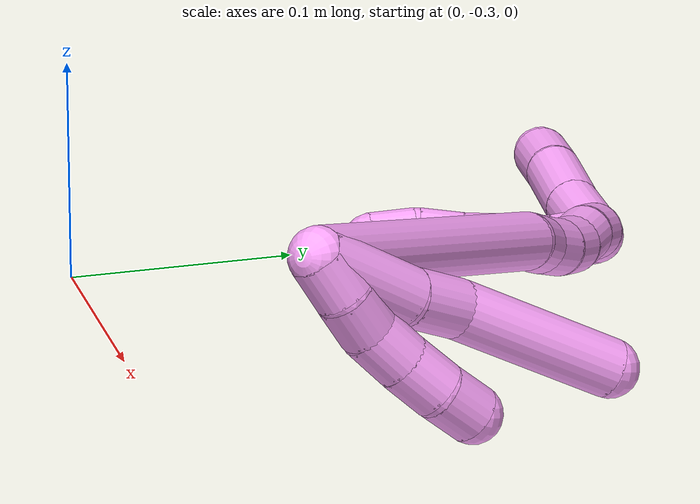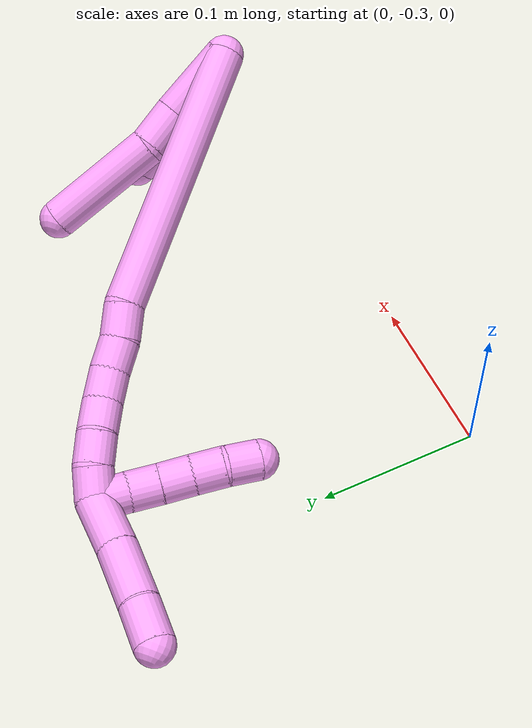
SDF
<sdf version="1.7">
 <world name="default">
  <model name="4">
   <static>0</static>
   <link name="4">
    <collision name="collision-cylinder-e_1_2_8">
     <pose>0.009769 -0.007849 -0.020681 2.77888 0.415872 1.71061</pose>
     <geometry><cylinder><radius>0.0125</radius><length>0.048364</length></cylinder></geometry>
     <surface>
      <friction><ode><mu>1.16</mu><mu2>1.16</mu2><slip1>0</slip1><slip2>0</slip2></ode></friction>
      <contact><ode><kp>1e+06</kp><kd>1</kd><max_vel>0</max_vel><min_depth>0.001</min_depth></ode></contact>
     </surface>
    </collision>
    <visual name="visual-cylinder-e_1_2_8">
     <pose>0.009769 -0.007849 -0.020681 2.77888 0.415872 1.71061</pose>
     <geometry><cylinder><radius>0.0125</radius><length>0.048364</length></cylinder></geometry>
     <material><ambient>1 0.65098 0.996078 1</ambient></material>
    </visual>
    <collision name="collision-cylinder-e_2_8_9">
     <pose>0.023788 -0.018233 -0.053859 2.9414 0.321675 2.03298</pose>
     <geometry><cylinder><radius>0.0125</radius><length>0.026881</length></cylinder></geometry>
     <surface>
      <friction><ode><mu>1.16</mu><mu2>1.16</mu2><slip1>0</slip1><slip2>0</slip2></ode></friction>
      <contact><ode><kp>1e+06</kp><kd>1</kd><max_vel>0</max_vel><min_depth>0.001</min_depth></ode></contact>
     </surface>
    </collision>
    <visual name="visual-cylinder-e_2_8_9">
     <pose>0.023788 -0.018233 -0.053859 2.9414 0.321675 2.03298</pose>
     <geometry><cylinder><radius>0.0125</radius><length>0.026881</length></cylinder></geometry>
     <material><ambient>1 0.65098 0.996078 1</ambient></material>
    </visual>
    <collision name="collision-cylinder-e_3_9_6">
     <pose>0.048912 -0.031875 -0.095303 2.77523 0.592573 2.0507</pose>
     <geometry><cylinder><radius>0.0125</radius><length>0.074755</length></cylinder></geometry>
     <surface>
      <friction><ode><mu>1.16</mu><mu2>1.16</mu2><slip1>0</slip1><slip2>0</slip2></ode></friction>
      <contact><ode><kp>1e+06</kp><kd>1</kd><max_vel>0</max_vel><min_depth>0.001</min_depth></ode></contact>
     </surface>
    </collision>
    <visual name="visual-cylinder-e_3_9_6">
     <pose>0.048912 -0.031875 -0.095303 2.77523 0.592573 2.0507</pose>
     <geometry><cylinder><radius>0.0125</radius><length>0.074755</length></cylinder></geometry>
     <material><ambient>1 0.65098 0.996078 1</ambient></material>
    </visual>
    <collision name="collision-cylinder-e_1_2_10">
     <pose>0.003563 -0.00759 -0.00545 2.19359 0.364261 0.68934</pose>
     <geometry><cylinder><radius>0.0125</radius><length>0.02</length></cylinder></geometry>
     <surface>
      <friction><ode><mu>1.16</mu><mu2>1.16</mu2><slip1>0</slip1><slip2>0</slip2></ode></friction>
      <contact><ode><kp>1e+06</kp><kd>1</kd><max_vel>0</max_vel><min_depth>0.001</min_depth></ode></contact>
     </surface>
    </collision>
    <visual name="visual-cylinder-e_1_2_10">
     <pose>0.003563 -0.00759 -0.00545 2.19359 0.364261 0.68934</pose>
     <geometry><cylinder><radius>0.0125</radius><length>0.02</length></cylinder></geometry>
     <material><ambient>1 0.65098 0.996078 1</ambient></material>
    </visual>
    <collision name="collision-cylinder-e_2_10_11">
     <pose>0.00959 -0.022272 -0.017505 2.32056 0.249084 0.560142</pose>
     <geometry><cylinder><radius>0.0125</radius><length>0.02</length></cylinder></geometry>
     <surface>
      <friction><ode><mu>1.16</mu><mu2>1.16</mu2><slip1>0</slip1><slip2>0</slip2></ode></friction>
      <contact><ode><kp>1e+06</kp><kd>1</kd><max_vel>0</max_vel><min_depth>0.001</min_depth></ode></contact>
     </surface>
    </collision>
    <visual name="visual-cylinder-e_2_10_11">
     <pose>0.00959 -0.022272 -0.017505 2.32056 0.249084 0.560142</pose>
     <geometry><cylinder><radius>0.0125</radius><length>0.02</length></cylinder></geometry>
     <material><ambient>1 0.65098 0.996078 1</ambient></material>
    </visual>
    <collision name="collision-cylinder-e_3_11_12">
     <pose>0.016751 -0.035292 -0.030653 2.40557 0.48878 1.14818</pose>
     <geometry><cylinder><radius>0.0125</radius><length>0.02</length></cylinder></geometry>
     <surface>
      <friction><ode><mu>1.16</mu><mu2>1.16</mu2><slip1>0</slip1><slip2>0</slip2></ode></friction>
      <contact><ode><kp>1e+06</kp><kd>1</kd><max_vel>0</max_vel><min_depth>0.001</min_depth></ode></contact>
     </surface>
    </collision>
    <visual name="visual-cylinder-e_3_11_12">
     <pose>0.016751 -0.035292 -0.030653 2.40557 0.48878 1.14818</pose>
     <geometry><cylinder><radius>0.0125</radius><length>0.02</length></cylinder></geometry>
     <material><ambient>1 0.65098 0.996078 1</ambient></material>
    </visual>
    <collision name="collision-cylinder-e_4_12_13">
     <pose>0.026666 -0.046742 -0.043697 2.43727 0.549137 1.30799</pose>
     <geometry><cylinder><radius>0.0125</radius><length>0.02</length></cylinder></geometry>
     <surface>
      <friction><ode><mu>1.16</mu><mu2>1.16</mu2><slip1>0</slip1><slip2>0</slip2></ode></friction>
      <contact><ode><kp>1e+06</kp><kd>1</kd><max_vel>0</max_vel><min_depth>0.001</min_depth></ode></contact>
     </surface>
    </collision>
    <visual name="visual-cylinder-e_4_12_13">
     <pose>0.026666 -0.046742 -0.043697 2.43727 0.549137 1.30799</pose>
     <geometry><cylinder><radius>0.0125</radius><length>0.02</length></cylinder></geometry>
     <material><ambient>1 0.65098 0.996078 1</ambient></material>
    </visual>
    <collision name="collision-cylinder-e_5_13_5">
     <pose>0.035849 -0.057037 -0.05804 2.59507 0.407553 1.27064</pose>
     <geometry><cylinder><radius>0.0125</radius><length>0.02</length></cylinder></geometry>
     <surface>
      <friction><ode><mu>1.16</mu><mu2>1.16</mu2><slip1>0</slip1><slip2>0</slip2></ode></friction>
      <contact><ode><kp>1e+06</kp><kd>1</kd><max_vel>0</max_vel><min_depth>0.001</min_depth></ode></contact>
     </surface>
    </collision>
    <visual name="visual-cylinder-e_5_13_5">
     <pose>0.035849 -0.057037 -0.05804 2.59507 0.407553 1.27064</pose>
     <geometry><cylinder><radius>0.0125</radius><length>0.02</length></cylinder></geometry>
     <material><ambient>1 0.65098 0.996078 1</ambient></material>
    </visual>
    <collision name="collision-cylinder-e_1_2_14">
     <pose>-0.000698 -0.001216 -0.088998 3.12792 -0.007845 -1.04218</pose>
     <geometry><cylinder><radius>0.0125</radius><length>0.178018</length></cylinder></geometry>
     <surface>
      <friction><ode><mu>1.16</mu><mu2>1.16</mu2><slip1>0</slip1><slip2>0</slip2></ode></friction>
      <contact><ode><kp>1e+06</kp><kd>1</kd><max_vel>0</max_vel><min_depth>0.001</min_depth></ode></contact>
     </surface>
    </collision>
    <visual name="visual-cylinder-e_1_2_14">
     <pose>-0.000698 -0.001216 -0.088998 3.12792 -0.007845 -1.04218</pose>
     <geometry><cylinder><radius>0.0125</radius><length>0.178018</length></cylinder></geometry>
     <material><ambient>1 0.65098 0.996078 1</ambient></material>
    </visual>
    <collision name="collision-cylinder-e_2_14_15">
     <pose>-0.003838 -0.003989 -0.188363 2.9926 -0.228804 -1.98951</pose>
     <geometry><cylinder><radius>0.0125</radius><length>0.021527</length></cylinder></geometry>
     <surface>
      <friction><ode><mu>1.16</mu><mu2>1.16</mu2><slip1>0</slip1><slip2>0</slip2></ode></friction>
      <contact><ode><kp>1e+06</kp><kd>1</kd><max_vel>0</max_vel><min_depth>0.001</min_depth></ode></contact>
     </surface>
    </collision>
    <visual name="visual-cylinder-e_2_14_15">
     <pose>-0.003838 -0.003989 -0.188363 2.9926 -0.228804 -1.98951</pose>
     <geometry><cylinder><radius>0.0125</radius><length>0.021527</length></cylinder></geometry>
     <material><ambient>1 0.65098 0.996078 1</ambient></material>
    </visual>
    <collision name="collision-cylinder-e_3_15_16">
     <pose>-0.00681 -0.006639 -0.208727 3.03264 -0.052689 -0.900314</pose>
     <geometry><cylinder><radius>0.0125</radius><length>0.020142</length></cylinder></geometry>
     <surface>
      <friction><ode><mu>1.16</mu><mu2>1.16</mu2><slip1>0</slip1><slip2>0</slip2></ode></friction>
      <contact><ode><kp>1e+06</kp><kd>1</kd><max_vel>0</max_vel><min_depth>0.001</min_depth></ode></contact>
     </surface>
    </collision>
    <visual name="visual-cylinder-e_3_15_16">
     <pose>-0.00681 -0.006639 -0.208727 3.03264 -0.052689 -0.900314</pose>
     <geometry><cylinder><radius>0.0125</radius><length>0.020142</length></cylinder></geometry>
     <material><ambient>1 0.65098 0.996078 1</ambient></material>
    </visual>
    <collision name="collision-cylinder-e_4_16_17">
     <pose>-0.008942 -0.007775 -0.228663 3.13731 -0.159796 -3.08816</pose>
     <geometry><cylinder><radius>0.0125</radius><length>0.020134</length></cylinder></geometry>
     <surface>
      <friction><ode><mu>1.16</mu><mu2>1.16</mu2><slip1>0</slip1><slip2>0</slip2></ode></friction>
      <contact><ode><kp>1e+06</kp><kd>1</kd><max_vel>0</max_vel><min_depth>0.001</min_depth></ode></contact>
     </surface>
    </collision>
    <visual name="visual-cylinder-e_4_16_17">
     <pose>-0.008942 -0.007775 -0.228663 3.13731 -0.159796 -3.08816</pose>
     <geometry><cylinder><radius>0.0125</radius><length>0.020134</length></cylinder></geometry>
     <material><ambient>1 0.65098 0.996078 1</ambient></material>
    </visual>
    <collision name="collision-cylinder-e_5_17_18">
     <pose>-0.01284 -0.006258 -0.248277 -2.98178 -0.230203 1.93006</pose>
     <geometry><cylinder><radius>0.0125</radius><length>0.02013</length></cylinder></geometry>
     <surface>
      <friction><ode><mu>1.16</mu><mu2>1.16</mu2><slip1>0</slip1><slip2>0</slip2></ode></friction>
      <contact><ode><kp>1e+06</kp><kd>1</kd><max_vel>0</max_vel><min_depth>0.001</min_depth></ode></contact>
     </surface>
    </collision>
    <visual name="visual-cylinder-e_5_17_18">
     <pose>-0.01284 -0.006258 -0.248277 -2.98178 -0.230203 1.93006</pose>
     <geometry><cylinder><radius>0.0125</radius><length>0.02013</length></cylinder></geometry>
     <material><ambient>1 0.65098 0.996078 1</ambient></material>
    </visual>
    <collision name="collision-cylinder-e_6_18_19">
     <pose>-0.017724 -0.004887 -0.267617 3.12204 -0.261547 -2.99316</pose>
     <geometry><cylinder><radius>0.0125</radius><length>0.020016</length></cylinder></geometry>
     <surface>
      <friction><ode><mu>1.16</mu><mu2>1.16</mu2><slip1>0</slip1><slip2>0</slip2></ode></friction>
      <contact><ode><kp>1e+06</kp><kd>1</kd><max_vel>0</max_vel><min_depth>0.001</min_depth></ode></contact>
     </surface>
    </collision>
    <visual name="visual-cylinder-e_6_18_19">
     <pose>-0.017724 -0.004887 -0.267617 3.12204 -0.261547 -2.99316</pose>
     <geometry><cylinder><radius>0.0125</radius><length>0.020016</length></cylinder></geometry>
     <material><ambient>1 0.65098 0.996078 1</ambient></material>
    </visual>
    <collision name="collision-cylinder-e_7_19_1">
     <pose>-0.024397 -0.006952 -0.286234 2.93504 -0.420003 -2.23638</pose>
     <geometry><cylinder><radius>0.0125</radius><length>0.020033</length></cylinder></geometry>
     <surface>
      <friction><ode><mu>1.16</mu><mu2>1.16</mu2><slip1>0</slip1><slip2>0</slip2></ode></friction>
      <contact><ode><kp>1e+06</kp><kd>1</kd><max_vel>0</max_vel><min_depth>0.001</min_depth></ode></contact>
     </surface>
    </collision>
    <visual name="visual-cylinder-e_7_19_1">
     <pose>-0.024397 -0.006952 -0.286234 2.93504 -0.420003 -2.23638</pose>
     <geometry><cylinder><radius>0.0125</radius><length>0.020033</length></cylinder></geometry>
     <material><ambient>1 0.65098 0.996078 1</ambient></material>
    </visual>
    <collision name="collision-cylinder-e_1_1_20">
     <pose>-0.035972 -0.011291 -0.289036 0.380996 -0.846644 -0.173334</pose>
     <geometry><cylinder><radius>0.0125</radius><length>0.02</length></cylinder></geometry>
     <surface>
      <friction><ode><mu>1.16</mu><mu2>1.16</mu2><slip1>0</slip1><slip2>0</slip2></ode></friction>
      <contact><ode><kp>1e+06</kp><kd>1</kd><max_vel>0</max_vel><min_depth>0.001</min_depth></ode></contact>
     </surface>
    </collision>
    <visual name="visual-cylinder-e_1_1_20">
     <pose>-0.035972 -0.011291 -0.289036 0.380996 -0.846644 -0.173334</pose>
     <geometry><cylinder><radius>0.0125</radius><length>0.02</length></cylinder></geometry>
     <material><ambient>1 0.65098 0.996078 1</ambient></material>
    </visual>
    <collision name="collision-cylinder-e_2_20_21">
     <pose>-0.05167 -0.014219 -0.277191 0.081363 -0.962682 -0.042514</pose>
     <geometry><cylinder><radius>0.0125</radius><length>0.02</length></cylinder></geometry>
     <surface>
      <friction><ode><mu>1.16</mu><mu2>1.16</mu2><slip1>0</slip1><slip2>0</slip2></ode></friction>
      <contact><ode><kp>1e+06</kp><kd>1</kd><max_vel>0</max_vel><min_depth>0.001</min_depth></ode></contact>
     </surface>
    </collision>
    <visual name="visual-cylinder-e_2_20_21">
     <pose>-0.05167 -0.014219 -0.277191 0.081363 -0.962682 -0.042514</pose>
     <geometry><cylinder><radius>0.0125</radius><length>0.02</length></cylinder></geometry>
     <material><ambient>1 0.65098 0.996078 1</ambient></material>
    </visual>
    <collision name="collision-cylinder-e_3_21_22">
     <pose>-0.067926 -0.015132 -0.26558 0.075632 -0.935464 -0.038216</pose>
     <geometry><cylinder><radius>0.0125</radius><length>0.02</length></cylinder></geometry>
     <surface>
      <friction><ode><mu>1.16</mu><mu2>1.16</mu2><slip1>0</slip1><slip2>0</slip2></ode></friction>
      <contact><ode><kp>1e+06</kp><kd>1</kd><max_vel>0</max_vel><min_depth>0.001</min_depth></ode></contact>
     </surface>
    </collision>
    <visual name="visual-cylinder-e_3_21_22">
     <pose>-0.067926 -0.015132 -0.26558 0.075632 -0.935464 -0.038216</pose>
     <geometry><cylinder><radius>0.0125</radius><length>0.02</length></cylinder></geometry>
     <material><ambient>1 0.65098 0.996078 1</ambient></material>
    </visual>
    <collision name="collision-cylinder-e_4_22_23">
     <pose>-0.084251 -0.015277 -0.254058 -0.054054 -0.974985 0.028663</pose>
     <geometry><cylinder><radius>0.0125</radius><length>0.02</length></cylinder></geometry>
     <surface>
      <friction><ode><mu>1.16</mu><mu2>1.16</mu2><slip1>0</slip1><slip2>0</slip2></ode></friction>
      <contact><ode><kp>1e+06</kp><kd>1</kd><max_vel>0</max_vel><min_depth>0.001</min_depth></ode></contact>
     </surface>
    </collision>
    <visual name="visual-cylinder-e_4_22_23">
     <pose>-0.084251 -0.015277 -0.254058 -0.054054 -0.974985 0.028663</pose>
     <geometry><cylinder><radius>0.0125</radius><length>0.02</length></cylinder></geometry>
     <material><ambient>1 0.65098 0.996078 1</ambient></material>
    </visual>
    <collision name="collision-cylinder-e_5_23_4">
     <pose>-0.100642 -0.016905 -0.242938 0.336606 -0.946489 -0.173569</pose>
     <geometry><cylinder><radius>0.0125</radius><length>0.02</length></cylinder></geometry>
     <surface>
      <friction><ode><mu>1.16</mu><mu2>1.16</mu2><slip1>0</slip1><slip2>0</slip2></ode></friction>
      <contact><ode><kp>1e+06</kp><kd>1</kd><max_vel>0</max_vel><min_depth>0.001</min_depth></ode></contact>
     </surface>
    </collision>
    <visual name="visual-cylinder-e_5_23_4">
     <pose>-0.100642 -0.016905 -0.242938 0.336606 -0.946489 -0.173569</pose>
     <geometry><cylinder><radius>0.0125</radius><length>0.02</length></cylinder></geometry>
     <material><ambient>1 0.65098 0.996078 1</ambient></material>
    </visual>
    <collision name="collision-cylinder-e_1_1_24">
     <pose>-0.040628 -0.004235 -0.306893 -2.76773 -0.768059 2.26605</pose>
     <geometry><cylinder><radius>0.0125</radius><length>0.034968</length></cylinder></geometry>
     <surface>
      <friction><ode><mu>1.16</mu><mu2>1.16</mu2><slip1>0</slip1><slip2>0</slip2></ode></friction>
      <contact><ode><kp>1e+06</kp><kd>1</kd><max_vel>0</max_vel><min_depth>0.001</min_depth></ode></contact>
     </surface>
    </collision>
    <visual name="visual-cylinder-e_1_1_24">
     <pose>-0.040628 -0.004235 -0.306893 -2.76773 -0.768059 2.26605</pose>
     <geometry><cylinder><radius>0.0125</radius><length>0.034968</length></cylinder></geometry>
     <material><ambient>1 0.65098 0.996078 1</ambient></material>
    </visual>
    <collision name="collision-cylinder-e_2_24_25">
     <pose>-0.06536 0.006083 -0.332026 -2.73848 -0.711567 2.13609</pose>
     <geometry><cylinder><radius>0.0125</radius><length>0.038546</length></cylinder></geometry>
     <surface>
      <friction><ode><mu>1.16</mu><mu2>1.16</mu2><slip1>0</slip1><slip2>0</slip2></ode></friction>
      <contact><ode><kp>1e+06</kp><kd>1</kd><max_vel>0</max_vel><min_depth>0.001</min_depth></ode></contact>
     </surface>
    </collision>
    <visual name="visual-cylinder-e_2_24_25">
     <pose>-0.06536 0.006083 -0.332026 -2.73848 -0.711567 2.13609</pose>
     <geometry><cylinder><radius>0.0125</radius><length>0.038546</length></cylinder></geometry>
     <material><ambient>1 0.65098 0.996078 1</ambient></material>
    </visual>
    <collision name="collision-cylinder-e_3_25_3">
     <pose>-0.086569 0.014427 -0.355156 -2.87813 -0.709117 2.45419</pose>
     <geometry><cylinder><radius>0.0125</radius><length>0.026486</length></cylinder></geometry>
     <surface>
      <friction><ode><mu>1.16</mu><mu2>1.16</mu2><slip1>0</slip1><slip2>0</slip2></ode></friction>
      <contact><ode><kp>1e+06</kp><kd>1</kd><max_vel>0</max_vel><min_depth>0.001</min_depth></ode></contact>
     </surface>
    </collision>
    <visual name="visual-cylinder-e_3_25_3">
     <pose>-0.086569 0.014427 -0.355156 -2.87813 -0.709117 2.45419</pose>
     <geometry><cylinder><radius>0.0125</radius><length>0.026486</length></cylinder></geometry>
     <material><ambient>1 0.65098 0.996078 1</ambient></material>
    </visual>
    <collision name="collision-sphere-3">
     <pose>-0.095193 0.017044 -0.364859 0 -0 0</pose>
     <geometry><sphere><radius>0.0125</radius></sphere></geometry>
     <surface>
      <friction><ode><mu>1.16</mu><mu2>1.16</mu2><slip1>0</slip1><slip2>0</slip2></ode></friction>
      <contact><ode><kp>1e+06</kp><kd>1</kd><max_vel>0</max_vel><min_depth>0.001</min_depth></ode></contact>
     </surface>
    </collision>
    <visual name="visual-sphere-3">
     <pose>-0.095193 0.017044 -0.364859 0 -0 0</pose>
     <geometry><sphere><radius>0.0125</radius></sphere></geometry>
     <material><ambient>1 0.65098 0.996078 1</ambient></material>
    </visual>
    <collision name="collision-sphere-25">
     <pose>-0.077946 0.011809 -0.345452 0 -0 0</pose>
     <geometry><sphere><radius>0.0125</radius></sphere></geometry>
     <surface>
      <friction><ode><mu>1.16</mu><mu2>1.16</mu2><slip1>0</slip1><slip2>0</slip2></ode></friction>
      <contact><ode><kp>1e+06</kp><kd>1</kd><max_vel>0</max_vel><min_depth>0.001</min_depth></ode></contact>
     </surface>
    </collision>
    <visual name="visual-sphere-25">
     <pose>-0.077946 0.011809 -0.345452 0 -0 0</pose>
     <geometry><sphere><radius>0.0125</radius></sphere></geometry>
     <material><ambient>1 0.65098 0.996078 1</ambient></material>
    </visual>
    <collision name="collision-sphere-24">
     <pose>-0.052775 0.000358 -0.3186 0 -0 0</pose>
     <geometry><sphere><radius>0.0125</radius></sphere></geometry>
     <surface>
      <friction><ode><mu>1.16</mu><mu2>1.16</mu2><slip1>0</slip1><slip2>0</slip2></ode></friction>
      <contact><ode><kp>1e+06</kp><kd>1</kd><max_vel>0</max_vel><min_depth>0.001</min_depth></ode></contact>
     </surface>
    </collision>
    <visual name="visual-sphere-24">
     <pose>-0.052775 0.000358 -0.3186 0 -0 0</pose>
     <geometry><sphere><radius>0.0125</radius></sphere></geometry>
     <material><ambient>1 0.65098 0.996078 1</ambient></material>
    </visual>
    <collision name="collision-sphere-4">
     <pose>-0.108756 -0.018835 -0.23742 0 -0 0</pose>
     <geometry><sphere><radius>0.0125</radius></sphere></geometry>
     <surface>
      <friction><ode><mu>1.16</mu><mu2>1.16</mu2><slip1>0</slip1><slip2>0</slip2></ode></friction>
      <contact><ode><kp>1e+06</kp><kd>1</kd><max_vel>0</max_vel><min_depth>0.001</min_depth></ode></contact>
     </surface>
    </collision>
    <visual name="visual-sphere-4">
     <pose>-0.108756 -0.018835 -0.23742 0 -0 0</pose>
     <geometry><sphere><radius>0.0125</radius></sphere></geometry>
     <material><ambient>1 0.65098 0.996078 1</ambient></material>
    </visual>
    <collision name="collision-sphere-23">
     <pose>-0.092528 -0.014974 -0.248455 0 -0 0</pose>
     <geometry><sphere><radius>0.0125</radius></sphere></geometry>
     <surface>
      <friction><ode><mu>1.16</mu><mu2>1.16</mu2><slip1>0</slip1><slip2>0</slip2></ode></friction>
      <contact><ode><kp>1e+06</kp><kd>1</kd><max_vel>0</max_vel><min_depth>0.001</min_depth></ode></contact>
     </surface>
    </collision>
    <visual name="visual-sphere-23">
     <pose>-0.092528 -0.014974 -0.248455 0 -0 0</pose>
     <geometry><sphere><radius>0.0125</radius></sphere></geometry>
     <material><ambient>1 0.65098 0.996078 1</ambient></material>
    </visual>
    <collision name="collision-sphere-22">
     <pose>-0.075974 -0.01558 -0.259662 0 -0 0</pose>
     <geometry><sphere><radius>0.0125</radius></sphere></geometry>
     <surface>
      <friction><ode><mu>1.16</mu><mu2>1.16</mu2><slip1>0</slip1><slip2>0</slip2></ode></friction>
      <contact><ode><kp>1e+06</kp><kd>1</kd><max_vel>0</max_vel><min_depth>0.001</min_depth></ode></contact>
     </surface>
    </collision>
    <visual name="visual-sphere-22">
     <pose>-0.075974 -0.01558 -0.259662 0 -0 0</pose>
     <geometry><sphere><radius>0.0125</radius></sphere></geometry>
     <material><ambient>1 0.65098 0.996078 1</ambient></material>
    </visual>
    <collision name="collision-sphere-21">
     <pose>-0.059877 -0.014684 -0.271497 0 -0 0</pose>
     <geometry><sphere><radius>0.0125</radius></sphere></geometry>
     <surface>
      <friction><ode><mu>1.16</mu><mu2>1.16</mu2><slip1>0</slip1><slip2>0</slip2></ode></friction>
      <contact><ode><kp>1e+06</kp><kd>1</kd><max_vel>0</max_vel><min_depth>0.001</min_depth></ode></contact>
     </surface>
    </collision>
    <visual name="visual-sphere-21">
     <pose>-0.059877 -0.014684 -0.271497 0 -0 0</pose>
     <geometry><sphere><radius>0.0125</radius></sphere></geometry>
     <material><ambient>1 0.65098 0.996078 1</ambient></material>
    </visual>
    <collision name="collision-sphere-20">
     <pose>-0.043462 -0.013755 -0.282886 0 -0 0</pose>
     <geometry><sphere><radius>0.0125</radius></sphere></geometry>
     <surface>
      <friction><ode><mu>1.16</mu><mu2>1.16</mu2><slip1>0</slip1><slip2>0</slip2></ode></friction>
      <contact><ode><kp>1e+06</kp><kd>1</kd><max_vel>0</max_vel><min_depth>0.001</min_depth></ode></contact>
     </surface>
    </collision>
    <visual name="visual-sphere-20">
     <pose>-0.043462 -0.013755 -0.282886 0 -0 0</pose>
     <geometry><sphere><radius>0.0125</radius></sphere></geometry>
     <material><ambient>1 0.65098 0.996078 1</ambient></material>
    </visual>
    <collision name="collision-sphere-11">
     <pose>0.012056 -0.029364 -0.024109 0 -0 0</pose>
     <geometry><sphere><radius>0.0125</radius></sphere></geometry>
     <surface>
      <friction><ode><mu>1.16</mu><mu2>1.16</mu2><slip1>0</slip1><slip2>0</slip2></ode></friction>
      <contact><ode><kp>1e+06</kp><kd>1</kd><max_vel>0</max_vel><min_depth>0.001</min_depth></ode></contact>
     </surface>
    </collision>
    <visual name="visual-sphere-11">
     <pose>0.012056 -0.029364 -0.024109 0 -0 0</pose>
     <geometry><sphere><radius>0.0125</radius></sphere></geometry>
     <material><ambient>1 0.65098 0.996078 1</ambient></material>
    </visual>
    <collision name="collision-sphere-10">
     <pose>0.007125 -0.015179 -0.010901 0 -0 0</pose>
     <geometry><sphere><radius>0.0125</radius></sphere></geometry>
     <surface>
      <friction><ode><mu>1.16</mu><mu2>1.16</mu2><slip1>0</slip1><slip2>0</slip2></ode></friction>
      <contact><ode><kp>1e+06</kp><kd>1</kd><max_vel>0</max_vel><min_depth>0.001</min_depth></ode></contact>
     </surface>
    </collision>
    <visual name="visual-sphere-10">
     <pose>0.007125 -0.015179 -0.010901 0 -0 0</pose>
     <geometry><sphere><radius>0.0125</radius></sphere></geometry>
     <material><ambient>1 0.65098 0.996078 1</ambient></material>
    </visual>
    <collision name="collision-sphere-6">
     <pose>0.069788 -0.042982 -0.124251 0 -0 0</pose>
     <geometry><sphere><radius>0.0125</radius></sphere></geometry>
     <surface>
      <friction><ode><mu>1.16</mu><mu2>1.16</mu2><slip1>0</slip1><slip2>0</slip2></ode></friction>
      <contact><ode><kp>1e+06</kp><kd>1</kd><max_vel>0</max_vel><min_depth>0.001</min_depth></ode></contact>
     </surface>
    </collision>
    <visual name="visual-sphere-6">
     <pose>0.069788 -0.042982 -0.124251 0 -0 0</pose>
     <geometry><sphere><radius>0.0125</radius></sphere></geometry>
     <material><ambient>1 0.65098 0.996078 1</ambient></material>
    </visual>
    <collision name="collision-sphere-9">
     <pose>0.028037 -0.020769 -0.066356 0 -0 0</pose>
     <geometry><sphere><radius>0.0125</radius></sphere></geometry>
     <surface>
      <friction><ode><mu>1.16</mu><mu2>1.16</mu2><slip1>0</slip1><slip2>0</slip2></ode></friction>
      <contact><ode><kp>1e+06</kp><kd>1</kd><max_vel>0</max_vel><min_depth>0.001</min_depth></ode></contact>
     </surface>
    </collision>
    <visual name="visual-sphere-9">
     <pose>0.028037 -0.020769 -0.066356 0 -0 0</pose>
     <geometry><sphere><radius>0.0125</radius></sphere></geometry>
     <material><ambient>1 0.65098 0.996078 1</ambient></material>
    </visual>
    <collision name="collision-sphere-2">
     <geometry><sphere><radius>0.0125</radius></sphere></geometry>
     <surface>
      <friction><ode><mu>1.16</mu><mu2>1.16</mu2><slip1>0</slip1><slip2>0</slip2></ode></friction>
      <contact><ode><kp>1e+06</kp><kd>1</kd><max_vel>0</max_vel><min_depth>0.001</min_depth></ode></contact>
     </surface>
    </collision>
    <visual name="visual-sphere-2">
     <geometry><sphere><radius>0.0125</radius></sphere></geometry>
     <material><ambient>1 0.65098 0.996078 1</ambient></material>
    </visual>
    <collision name="collision-sphere-19">
     <pose>-0.020312 -0.005076 -0.277282 0 -0 0</pose>
     <geometry><sphere><radius>0.0125</radius></sphere></geometry>
     <surface>
      <friction><ode><mu>1.16</mu><mu2>1.16</mu2><slip1>0</slip1><slip2>0</slip2></ode></friction>
      <contact><ode><kp>1e+06</kp><kd>1</kd><max_vel>0</max_vel><min_depth>0.001</min_depth></ode></contact>
     </surface>
    </collision>
    <visual name="visual-sphere-19">
     <pose>-0.020312 -0.005076 -0.277282 0 -0 0</pose>
     <geometry><sphere><radius>0.0125</radius></sphere></geometry>
     <material><ambient>1 0.65098 0.996078 1</ambient></material>
    </visual>
    <collision name="collision-sphere-8">
     <pose>0.019538 -0.015697 -0.041363 0 -0 0</pose>
     <geometry><sphere><radius>0.0125</radius></sphere></geometry>
     <surface>
      <friction><ode><mu>1.16</mu><mu2>1.16</mu2><slip1>0</slip1><slip2>0</slip2></ode></friction>
      <contact><ode><kp>1e+06</kp><kd>1</kd><max_vel>0</max_vel><min_depth>0.001</min_depth></ode></contact>
     </surface>
    </collision>
    <visual name="visual-sphere-8">
     <pose>0.019538 -0.015697 -0.041363 0 -0 0</pose>
     <geometry><sphere><radius>0.0125</radius></sphere></geometry>
     <material><ambient>1 0.65098 0.996078 1</ambient></material>
    </visual>
    <collision name="collision-sphere-12">
     <pose>0.021446 -0.041219 -0.037197 0 -0 0</pose>
     <geometry><sphere><radius>0.0125</radius></sphere></geometry>
     <surface>
      <friction><ode><mu>1.16</mu><mu2>1.16</mu2><slip1>0</slip1><slip2>0</slip2></ode></friction>
      <contact><ode><kp>1e+06</kp><kd>1</kd><max_vel>0</max_vel><min_depth>0.001</min_depth></ode></contact>
     </surface>
    </collision>
    <visual name="visual-sphere-12">
     <pose>0.021446 -0.041219 -0.037197 0 -0 0</pose>
     <geometry><sphere><radius>0.0125</radius></sphere></geometry>
     <material><ambient>1 0.65098 0.996078 1</ambient></material>
    </visual>
    <collision name="collision-sphere-13">
     <pose>0.031886 -0.052266 -0.050197 0 -0 0</pose>
     <geometry><sphere><radius>0.0125</radius></sphere></geometry>
     <surface>
      <friction><ode><mu>1.16</mu><mu2>1.16</mu2><slip1>0</slip1><slip2>0</slip2></ode></friction>
      <contact><ode><kp>1e+06</kp><kd>1</kd><max_vel>0</max_vel><min_depth>0.001</min_depth></ode></contact>
     </surface>
    </collision>
    <visual name="visual-sphere-13">
     <pose>0.031886 -0.052266 -0.050197 0 -0 0</pose>
     <geometry><sphere><radius>0.0125</radius></sphere></geometry>
     <material><ambient>1 0.65098 0.996078 1</ambient></material>
    </visual>
    <collision name="collision-sphere-5">
     <pose>0.039813 -0.061809 -0.065884 0 -0 0</pose>
     <geometry><sphere><radius>0.0125</radius></sphere></geometry>
     <surface>
      <friction><ode><mu>1.16</mu><mu2>1.16</mu2><slip1>0</slip1><slip2>0</slip2></ode></friction>
      <contact><ode><kp>1e+06</kp><kd>1</kd><max_vel>0</max_vel><min_depth>0.001</min_depth></ode></contact>
     </surface>
    </collision>
    <visual name="visual-sphere-5">
     <pose>0.039813 -0.061809 -0.065884 0 -0 0</pose>
     <geometry><sphere><radius>0.0125</radius></sphere></geometry>
     <material><ambient>1 0.65098 0.996078 1</ambient></material>
    </visual>
    <collision name="collision-sphere-14">
     <pose>-0.001397 -0.002433 -0.177996 0 -0 0</pose>
     <geometry><sphere><radius>0.0125</radius></sphere></geometry>
     <surface>
      <friction><ode><mu>1.16</mu><mu2>1.16</mu2><slip1>0</slip1><slip2>0</slip2></ode></friction>
      <contact><ode><kp>1e+06</kp><kd>1</kd><max_vel>0</max_vel><min_depth>0.001</min_depth></ode></contact>
     </surface>
    </collision>
    <visual name="visual-sphere-14">
     <pose>-0.001397 -0.002433 -0.177996 0 -0 0</pose>
     <geometry><sphere><radius>0.0125</radius></sphere></geometry>
     <material><ambient>1 0.65098 0.996078 1</ambient></material>
    </visual>
    <collision name="collision-sphere-15">
     <pose>-0.006279 -0.005545 -0.19873 0 -0 0</pose>
     <geometry><sphere><radius>0.0125</radius></sphere></geometry>
     <surface>
      <friction><ode><mu>1.16</mu><mu2>1.16</mu2><slip1>0</slip1><slip2>0</slip2></ode></friction>
      <contact><ode><kp>1e+06</kp><kd>1</kd><max_vel>0</max_vel><min_depth>0.001</min_depth></ode></contact>
     </surface>
    </collision>
    <visual name="visual-sphere-15">
     <pose>-0.006279 -0.005545 -0.19873 0 -0 0</pose>
     <geometry><sphere><radius>0.0125</radius></sphere></geometry>
     <material><ambient>1 0.65098 0.996078 1</ambient></material>
    </visual>
    <collision name="collision-sphere-16">
     <pose>-0.00734 -0.007732 -0.218725 0 -0 0</pose>
     <geometry><sphere><radius>0.0125</radius></sphere></geometry>
     <surface>
      <friction><ode><mu>1.16</mu><mu2>1.16</mu2><slip1>0</slip1><slip2>0</slip2></ode></friction>
      <contact><ode><kp>1e+06</kp><kd>1</kd><max_vel>0</max_vel><min_depth>0.001</min_depth></ode></contact>
     </surface>
    </collision>
    <visual name="visual-sphere-16">
     <pose>-0.00734 -0.007732 -0.218725 0 -0 0</pose>
     <geometry><sphere><radius>0.0125</radius></sphere></geometry>
     <material><ambient>1 0.65098 0.996078 1</ambient></material>
    </visual>
    <collision name="collision-sphere-17">
     <pose>-0.010544 -0.007817 -0.238602 0 -0 0</pose>
     <geometry><sphere><radius>0.0125</radius></sphere></geometry>
     <surface>
      <friction><ode><mu>1.16</mu><mu2>1.16</mu2><slip1>0</slip1><slip2>0</slip2></ode></friction>
      <contact><ode><kp>1e+06</kp><kd>1</kd><max_vel>0</max_vel><min_depth>0.001</min_depth></ode></contact>
     </surface>
    </collision>
    <visual name="visual-sphere-17">
     <pose>-0.010544 -0.007817 -0.238602 0 -0 0</pose>
     <geometry><sphere><radius>0.0125</radius></sphere></geometry>
     <material><ambient>1 0.65098 0.996078 1</ambient></material>
    </visual>
    <collision name="collision-sphere-18">
     <pose>-0.015137 -0.004698 -0.257951 0 -0 0</pose>
     <geometry><sphere><radius>0.0125</radius></sphere></geometry>
     <surface>
      <friction><ode><mu>1.16</mu><mu2>1.16</mu2><slip1>0</slip1><slip2>0</slip2></ode></friction>
      <contact><ode><kp>1e+06</kp><kd>1</kd><max_vel>0</max_vel><min_depth>0.001</min_depth></ode></contact>
     </surface>
    </collision>
    <visual name="visual-sphere-18">
     <pose>-0.015137 -0.004698 -0.257951 0 -0 0</pose>
     <geometry><sphere><radius>0.0125</radius></sphere></geometry>
     <material><ambient>1 0.65098 0.996078 1</ambient></material>
    </visual>
    <collision name="collision-sphere-1">
     <pose>-0.028481 -0.008828 -0.295186 0 -0 0</pose>
     <geometry><sphere><radius>0.0125</radius></sphere></geometry>
     <surface>
      <friction><ode><mu>1.16</mu><mu2>1.16</mu2><slip1>0</slip1><slip2>0</slip2></ode></friction>
      <contact><ode><kp>1e+06</kp><kd>1</kd><max_vel>0</max_vel><min_depth>0.001</min_depth></ode></contact>
     </surface>
    </collision>
    <visual name="visual-sphere-1">
     <pose>-0.028481 -0.008828 -0.295186 0 -0 0</pose>
     <geometry><sphere><radius>0.0125</radius></sphere></geometry>
     <material><ambient>1 0.65098 0.996078 1</ambient></material>
    </visual>
    <inertial>
     <pose>-0.010735 -0.011433 -0.155982 0 -0 0</pose>
     <mass>0.75</mass>
     <inertia>
      <ixx>-0.000145</ixx>
      <ixy>0</ixy>
      <ixz>0</ixz>
      <iyy>-0.000561</iyy>
      <iyz>0</iyz>
      <izz>-2.4e-05</izz>
     </inertia>
    </inertial>
   </link>
   <pose>0.262821 -0.258985 0.10569 1.29314 -0.059656 0.774173</pose>
  </model>
 </world>
</sdf>
